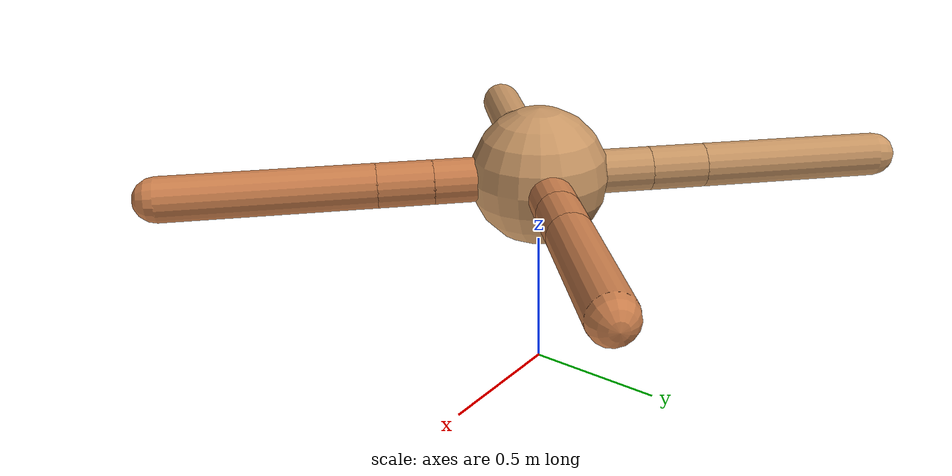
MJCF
<mujoco model="ant">
  <compiler angle="degree" coordinate="local" inertiafromgeom="true" />
  <option integrator="RK4" timestep="0.01" />
  <custom>
    <numeric data="0.0 0.0 0.55 1.0 0.0 0.0 0.0 0.0 1.0 0.0 -1.0 0.0 -1.0 0.0 1.0" name="init_qpos" />
  </custom>
  <default>
    <joint armature="1" damping="1" limited="true" />
    <geom conaffinity="0" condim="3" density="5.0" friction="1.5 0.1 0.1" margin="0.01" rgba="0.8 0.6 0.4 1" />
  </default>
  <worldbody>
    <body name="torso" pos="0 0 0.75">
      <geom name="torso_geom" pos="0 0 0" size="0.25" type="sphere" />

      <body name="front_left_leg" pos="0 0 0">
        <geom fromto="0.0 0.0 0.0 0.2527330127049129 0.2527330127049129 0.0" name="aux_1_geom" size="0.08" type="capsule" rgba=".8 .5 .3 1" />
        <body name="aux_1" pos="0.2527330127049129 0.2527330127049129 0.0">
          <joint axis="0 0 1" name="hip_1" pos="0.0 0.0 0.0" range="-40 40" type="hinge" />
          <geom fromto="0.0 0.0 0.0 0.12588697538825255 0.12588697538825255 0.0" name="left_leg_geom" size="0.08" type="capsule" rgba=".8 .5 .3 1" />
          <body pos="0.12588697538825255 0.12588697538825255 0.0" name="front_left_foot">
            <joint axis="-1 1 0" name="ankle_1" pos="0.0 0.0 0.0" range="30 100" type="hinge" />
            <geom fromto="0.0 0.0 0.0 0.37479865150354796 0.37479865150354796 0.0" name="left_ankle_geom" size="0.08" type="capsule" rgba=".8 .5 .3 1" />
          </body>
        </body>
      </body>
      <body name="front_right_leg" pos="0 0 0">
        <geom fromto="0.0 0.0 0.0 -0.2880714114301463 0.2880714114301463 0.0" name="aux_2_geom" size="0.08" type="capsule" />
        <body name="aux_2" pos="-0.2880714114301463 0.2880714114301463 0.0">
          <joint axis="0 0 1" name="hip_2" pos="0.0 0.0 0.0" range="-40 40" type="hinge" />
          <geom fromto="0.0 0.0 0.0 -0.14461818647331623 0.14461818647331623 0.0" name="right_leg_geom" size="0.08" type="capsule" />
          <body pos="-0.14461818647331623 0.14461818647331623 0.0" name="front_right_foot">
            <joint axis="1 1 0" name="ankle_2" pos="0.0 0.0 0.0" range="-100 -30" type="hinge" />
            <geom fromto="0.0 0.0 0.0 -0.4771568281398324 0.4771568281398324 0.0" name="right_ankle_geom" size="0.08" type="capsule" />
          </body>
        </body>
      </body>
      <body name="left_back_leg" pos="0 0 0">
        <geom fromto="0.0 0.0 0.0 -0.20394109544605882 -0.20394109544605882 0.0" name="aux_3_geom" size="0.08" type="capsule" />
        <body name="aux_3" pos="-0.20394109544605882 -0.20394109544605882 0.0">
          <joint axis="0 0 1" name="hip_3" pos="0.0 0.0 0.0" range="-40 40" type="hinge" />
          <geom fromto="0.0 0.0 0.0 -0.17310125389576225 -0.17310125389576225 0.0" name="back_leg_geom" size="0.08" type="capsule" />
          <body pos="-0.17310125389576225 -0.17310125389576225 0.0" name="left_back_foot">
            <joint axis="-1 1 0" name="ankle_3" pos="0.0 0.0 0.0" range="-100 -30" type="hinge" />
            <geom fromto="0.0 0.0 0.0 -0.27736775688002097 -0.27736775688002097 0.0" name="third_ankle_geom" size="0.08" type="capsule" />
          </body>
        </body>
      </body>
      <body name="right_back_leg" pos="0 0 0">
        <geom fromto="0.0 0.0 0.0 0.269336646398244 -0.269336646398244 0.0" name="aux_4_geom" size="0.08" type="capsule" rgba=".8 .5 .3 1" />
        <body name="aux_4" pos="0.269336646398244 -0.269336646398244 0.0">
          <joint axis="0 0 1" name="hip_4" pos="0.0 0.0 0.0" range="-40 40" type="hinge" />
          <geom fromto="0.0 0.0 0.0 0.1396631160508418 -0.1396631160508418 0.0" name="rightback_leg_geom" size="0.08" type="capsule" rgba=".8 .5 .3 1" />
          <body pos="0.1396631160508418 -0.1396631160508418 0.0" name="right_back_foot">
            <joint axis="1 1 0" name="ankle_4" pos="0.0 0.0 0.0" range="30 100" type="hinge" />
            <geom fromto="0.0 0.0 0.0 0.5219992538535293 -0.5219992538535293 0.0" name="fourth_ankle_geom" size="0.08" type="capsule" rgba=".8 .5 .3 1" />
          </body>
        </body>
      </body>
    </body>
  </worldbody>
  <actuator>
    <motor ctrllimited="true" ctrlrange="-1.0 1.0" joint="hip_4" gear="150" />
    <motor ctrllimited="true" ctrlrange="-1.0 1.0" joint="ankle_4" gear="150" />
    <motor ctrllimited="true" ctrlrange="-1.0 1.0" joint="hip_1" gear="150" />
    <motor ctrllimited="true" ctrlrange="-1.0 1.0" joint="ankle_1" gear="150" />
    <motor ctrllimited="true" ctrlrange="-1.0 1.0" joint="hip_2" gear="150" />
    <motor ctrllimited="true" ctrlrange="-1.0 1.0" joint="ankle_2" gear="150" />
    <motor ctrllimited="true" ctrlrange="-1.0 1.0" joint="hip_3" gear="150" />
    <motor ctrllimited="true" ctrlrange="-1.0 1.0" joint="ankle_3" gear="150" />
  </actuator>
</mujoco>
